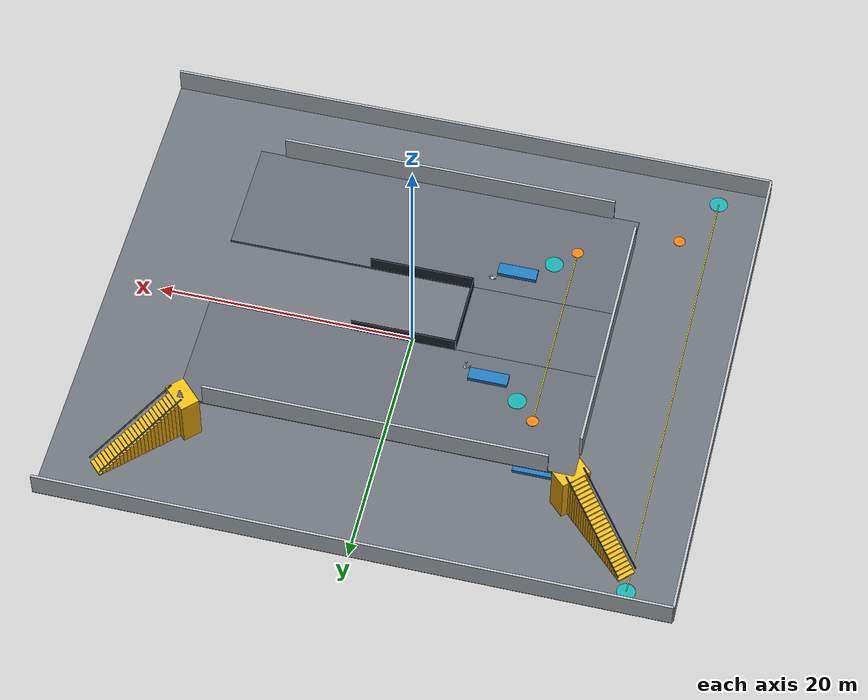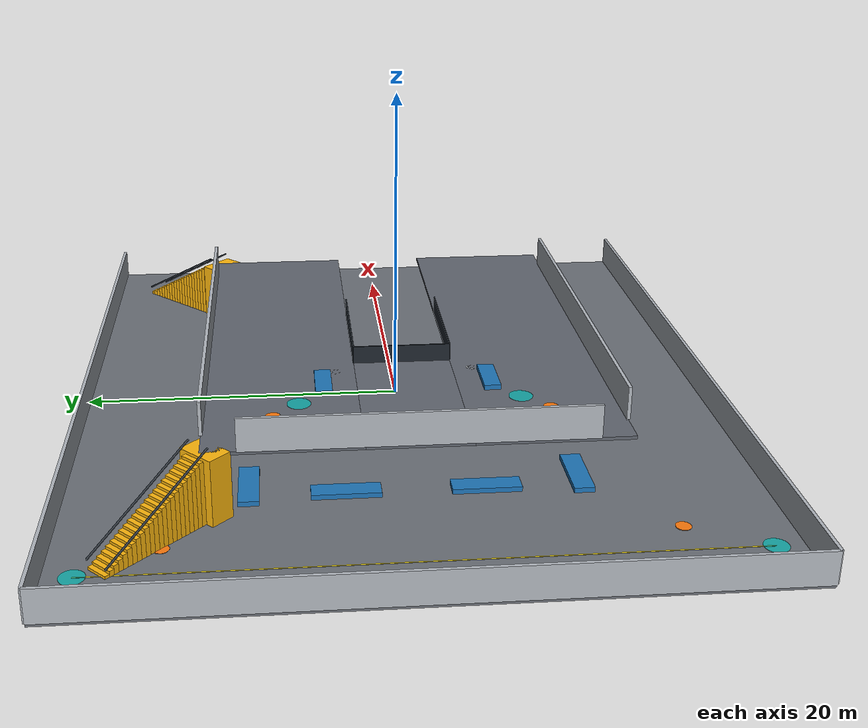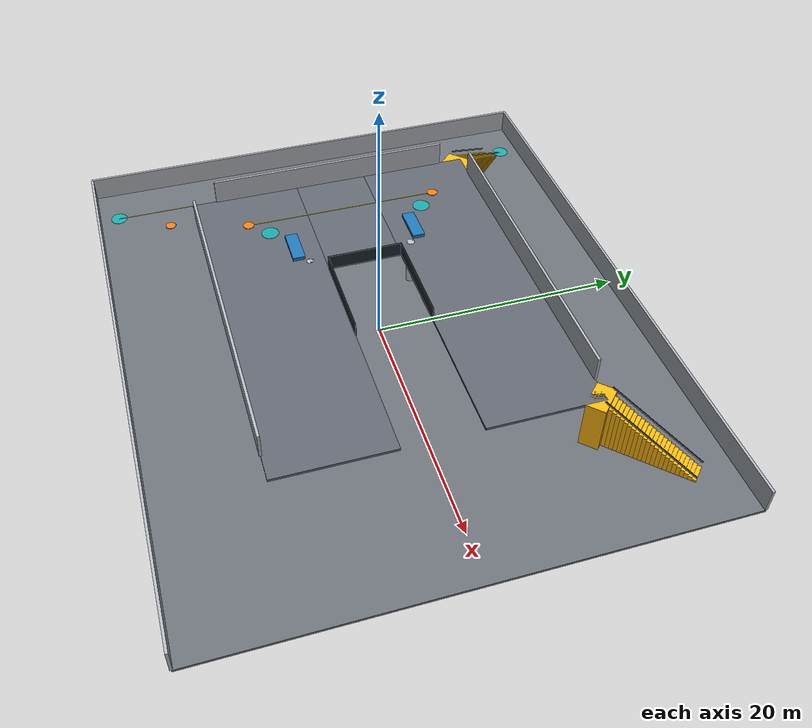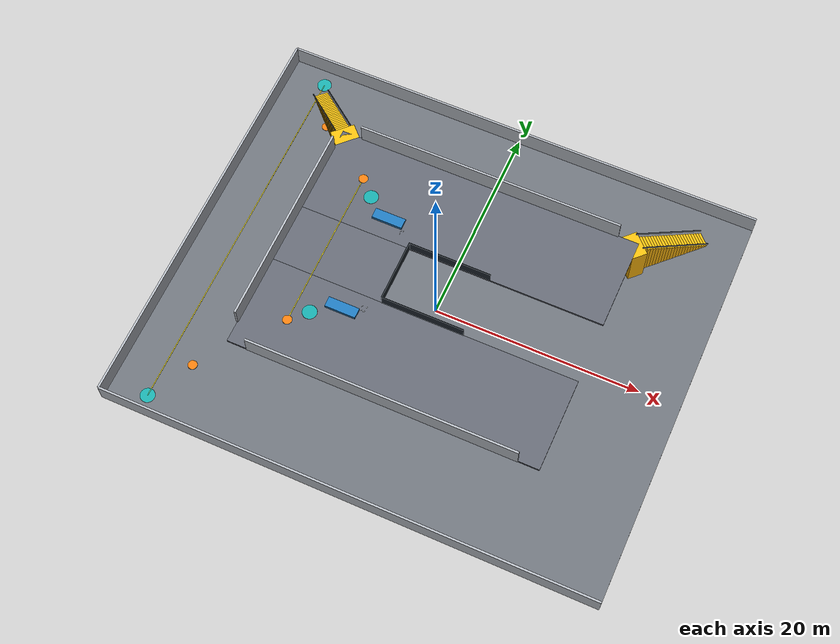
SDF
<sdf version="1.7">
 <world name="two_floor_warehouse">
  <model name="floor1">
   <static>true</static>
   <pose>0.0000 0.0000 -0.1000 0.0000 0.0000 0.0000</pose>
   <link name="link">
    <collision name="collision"><geometry><box><size>48 40 0.2</size></box></geometry></collision>
    <visual name="visual">
     <geometry><box><size>48 40 0.2</size></box></geometry>
     <material><ambient>.42 .44 .47 1</ambient><diffuse>.42 .44 .47 1</diffuse></material>
    </visual>
   </link>
  </model>
  <model name="floor2_north">
   <static>true</static>
   <pose>0.0000 7.5000 3.9000 0.0000 0.0000 0.0000</pose>
   <link name="link">
    <collision name="collision"><geometry><box><size>30.0 9.0 0.2</size></box></geometry></collision>
    <visual name="visual">
     <geometry><box><size>30.0 9.0 0.2</size></box></geometry>
     <material><ambient>.38 .40 .44 1</ambient><diffuse>.38 .40 .44 1</diffuse></material>
    </visual>
   </link>
  </model>
  <model name="floor2_south">
   <static>true</static>
   <pose>0.0000 -7.5000 3.9000 0.0000 0.0000 0.0000</pose>
   <link name="link">
    <collision name="collision"><geometry><box><size>30.0 9.0 0.2</size></box></geometry></collision>
    <visual name="visual">
     <geometry><box><size>30.0 9.0 0.2</size></box></geometry>
     <material><ambient>.38 .40 .44 1</ambient><diffuse>.38 .40 .44 1</diffuse></material>
    </visual>
   </link>
  </model>
  <model name="floor2_west">
   <static>true</static>
   <pose>-9.5000 0.0000 3.9000 0.0000 0.0000 0.0000</pose>
   <link name="link">
    <collision name="collision"><geometry><box><size>11.0 6.0 0.2</size></box></geometry></collision>
    <visual name="visual">
     <geometry><box><size>11.0 6.0 0.2</size></box></geometry>
     <material><ambient>.38 .40 .44 1</ambient><diffuse>.38 .40 .44 1</diffuse></material>
    </visual>
   </link>
  </model>
  <model name="atrium_rail_north">
   <static>true</static>
   <pose>0.0000 3.0000 4.5500 0.0000 0.0000 0.0000</pose>
   <link name="link">
    <collision name="collision"><geometry><box><size>8.0 0.08 1.1</size></box></geometry></collision>
    <visual name="visual">
     <geometry><box><size>8.0 0.08 1.1</size></box></geometry>
     <material><ambient>.12 .15 .18 1</ambient><diffuse>.12 .15 .18 1</diffuse></material>
    </visual>
   </link>
  </model>
  <model name="atrium_rail_south">
   <static>true</static>
   <pose>0.0000 -3.0000 4.5500 0.0000 0.0000 0.0000</pose>
   <link name="link">
    <collision name="collision"><geometry><box><size>8.0 0.08 1.1</size></box></geometry></collision>
    <visual name="visual">
     <geometry><box><size>8.0 0.08 1.1</size></box></geometry>
     <material><ambient>.12 .15 .18 1</ambient><diffuse>.12 .15 .18 1</diffuse></material>
    </visual>
   </link>
  </model>
  <model name="atrium_rail_west">
   <static>true</static>
   <pose>-4.0000 0.0000 4.5500 0.0000 0.0000 0.0000</pose>
   <link name="link">
    <collision name="collision"><geometry><box><size>0.08 6.0 1.1</size></box></geometry></collision>
    <visual name="visual">
     <geometry><box><size>0.08 6.0 1.1</size></box></geometry>
     <material><ambient>.12 .15 .18 1</ambient><diffuse>.12 .15 .18 1</diffuse></material>
    </visual>
   </link>
  </model>
  <model name="f1_wall_n">
   <static>true</static>
   <pose>0.0000 20.0000 1.0000 0.0000 0.0000 0.0000</pose>
   <link name="link">
    <collision name="collision"><geometry><box><size>48.0 0.2 2</size></box></geometry></collision>
    <visual name="visual">
     <geometry><box><size>48.0 0.2 2</size></box></geometry>
     <material><ambient>.7 .72 .75 1</ambient><diffuse>.7 .72 .75 1</diffuse></material>
    </visual>
   </link>
  </model>
  <model name="f1_wall_s">
   <static>true</static>
   <pose>0.0000 -20.0000 1.0000 0.0000 0.0000 0.0000</pose>
   <link name="link">
    <collision name="collision"><geometry><box><size>48.0 0.2 2</size></box></geometry></collision>
    <visual name="visual">
     <geometry><box><size>48.0 0.2 2</size></box></geometry>
     <material><ambient>.7 .72 .75 1</ambient><diffuse>.7 .72 .75 1</diffuse></material>
    </visual>
   </link>
  </model>
  <model name="f1_wall_w">
   <static>true</static>
   <pose>-24.0000 0.0000 1.0000 0.0000 0.0000 0.0000</pose>
   <link name="link">
    <collision name="collision"><geometry><box><size>0.2 40.0 2</size></box></geometry></collision>
    <visual name="visual">
     <geometry><box><size>0.2 40.0 2</size></box></geometry>
     <material><ambient>.7 .72 .75 1</ambient><diffuse>.7 .72 .75 1</diffuse></material>
    </visual>
   </link>
  </model>
  <model name="f2_wall_n">
   <static>true</static>
   <pose>0.0000 12.0000 5.0000 0.0000 0.0000 0.0000</pose>
   <link name="link">
    <collision name="collision"><geometry><box><size>26.0 0.2 2</size></box></geometry></collision>
    <visual name="visual">
     <geometry><box><size>26.0 0.2 2</size></box></geometry>
     <material><ambient>.7 .72 .75 1</ambient><diffuse>.7 .72 .75 1</diffuse></material>
    </visual>
   </link>
  </model>
  <model name="f2_wall_s">
   <static>true</static>
   <pose>0.0000 -12.0000 5.0000 0.0000 0.0000 0.0000</pose>
   <link name="link">
    <collision name="collision"><geometry><box><size>26.0 0.2 2</size></box></geometry></collision>
    <visual name="visual">
     <geometry><box><size>26.0 0.2 2</size></box></geometry>
     <material><ambient>.7 .72 .75 1</ambient><diffuse>.7 .72 .75 1</diffuse></material>
    </visual>
   </link>
  </model>
  <model name="f2_wall_w">
   <static>true</static>
   <pose>-15.0000 0.0000 5.0000 0.0000 0.0000 0.0000</pose>
   <link name="link">
    <collision name="collision"><geometry><box><size>0.2 20.0 2</size></box></geometry></collision>
    <visual name="visual">
     <geometry><box><size>0.2 20.0 2</size></box></geometry>
     <material><ambient>.7 .72 .75 1</ambient><diffuse>.7 .72 .75 1</diffuse></material>
    </visual>
   </link>
  </model>
  <model name="stair_ne">
   <static>true</static>
   <link name="step_01">
    <pose>19.9849 16.9849 0.0833 0 0 -2.356194</pose>
    <collision name="collision"><geometry><box><size>0.3080 1.4000 0.1667</size></box></geometry></collision>
    <visual name="visual">
     <geometry><box><size>0.3080 1.4000 0.1667</size></box></geometry>
     <material><ambient>1.0 0.72 0.05 1</ambient><diffuse>1.0 0.72 0.05 1</diffuse></material>
    </visual>
   </link>
   <link name="step_02">
    <pose>19.7728 16.7728 0.1667 0 0 -2.356194</pose>
    <collision name="collision"><geometry><box><size>0.3080 1.4000 0.3333</size></box></geometry></collision>
    <visual name="visual">
     <geometry><box><size>0.3080 1.4000 0.3333</size></box></geometry>
     <material><ambient>1.0 0.72 0.05 1</ambient><diffuse>1.0 0.72 0.05 1</diffuse></material>
    </visual>
   </link>
   <link name="step_03">
    <pose>19.5607 16.5607 0.2500 0 0 -2.356194</pose>
    <collision name="collision"><geometry><box><size>0.3080 1.4000 0.5000</size></box></geometry></collision>
    <visual name="visual">
     <geometry><box><size>0.3080 1.4000 0.5000</size></box></geometry>
     <material><ambient>1.0 0.72 0.05 1</ambient><diffuse>1.0 0.72 0.05 1</diffuse></material>
    </visual>
   </link>
   <link name="step_04">
    <pose>19.3486 16.3486 0.3333 0 0 -2.356194</pose>
    <collision name="collision"><geometry><box><size>0.3080 1.4000 0.6667</size></box></geometry></collision>
    <visual name="visual">
     <geometry><box><size>0.3080 1.4000 0.6667</size></box></geometry>
     <material><ambient>1.0 0.72 0.05 1</ambient><diffuse>1.0 0.72 0.05 1</diffuse></material>
    </visual>
   </link>
   <link name="step_05">
    <pose>19.1364 16.1364 0.4167 0 0 -2.356194</pose>
    <collision name="collision"><geometry><box><size>0.3080 1.4000 0.8333</size></box></geometry></collision>
    <visual name="visual">
     <geometry><box><size>0.3080 1.4000 0.8333</size></box></geometry>
     <material><ambient>1.0 0.72 0.05 1</ambient><diffuse>1.0 0.72 0.05 1</diffuse></material>
    </visual>
   </link>
   <link name="step_06">
    <pose>18.9243 15.9243 0.5000 0 0 -2.356194</pose>
    <collision name="collision"><geometry><box><size>0.3080 1.4000 1.0000</size></box></geometry></collision>
    <visual name="visual">
     <geometry><box><size>0.3080 1.4000 1.0000</size></box></geometry>
     <material><ambient>1.0 0.72 0.05 1</ambient><diffuse>1.0 0.72 0.05 1</diffuse></material>
    </visual>
   </link>
   <link name="step_07">
    <pose>18.7122 15.7122 0.5833 0 0 -2.356194</pose>
    <collision name="collision"><geometry><box><size>0.3080 1.4000 1.1667</size></box></geometry></collision>
    <visual name="visual">
     <geometry><box><size>0.3080 1.4000 1.1667</size></box></geometry>
     <material><ambient>1.0 0.72 0.05 1</ambient><diffuse>1.0 0.72 0.05 1</diffuse></material>
    </visual>
   </link>
   <link name="step_08">
    <pose>18.5001 15.5001 0.6667 0 0 -2.356194</pose>
    <collision name="collision"><geometry><box><size>0.3080 1.4000 1.3333</size></box></geometry></collision>
    <visual name="visual">
     <geometry><box><size>0.3080 1.4000 1.3333</size></box></geometry>
     <material><ambient>1.0 0.72 0.05 1</ambient><diffuse>1.0 0.72 0.05 1</diffuse></material>
    </visual>
   </link>
   <link name="step_09">
    <pose>18.2879 15.2879 0.7500 0 0 -2.356194</pose>
    <collision name="collision"><geometry><box><size>0.3080 1.4000 1.5000</size></box></geometry></collision>
    <visual name="visual">
     <geometry><box><size>0.3080 1.4000 1.5000</size></box></geometry>
     <material><ambient>1.0 0.72 0.05 1</ambient><diffuse>1.0 0.72 0.05 1</diffuse></material>
    </visual>
   </link>
   <link name="step_10">
    <pose>18.0758 15.0758 0.8333 0 0 -2.356194</pose>
    <collision name="collision"><geometry><box><size>0.3080 1.4000 1.6667</size></box></geometry></collision>
    <visual name="visual">
     <geometry><box><size>0.3080 1.4000 1.6667</size></box></geometry>
     <material><ambient>1.0 0.72 0.05 1</ambient><diffuse>1.0 0.72 0.05 1</diffuse></material>
    </visual>
   </link>
   <link name="step_11">
    <pose>17.8637 14.8637 0.9167 0 0 -2.356194</pose>
    <collision name="collision"><geometry><box><size>0.3080 1.4000 1.8333</size></box></geometry></collision>
    <visual name="visual">
     <geometry><box><size>0.3080 1.4000 1.8333</size></box></geometry>
     <material><ambient>1.0 0.72 0.05 1</ambient><diffuse>1.0 0.72 0.05 1</diffuse></material>
    </visual>
   </link>
   <link name="step_12">
    <pose>17.6516 14.6516 1.0000 0 0 -2.356194</pose>
    <collision name="collision"><geometry><box><size>0.3080 1.4000 2.0000</size></box></geometry></collision>
    <visual name="visual">
     <geometry><box><size>0.3080 1.4000 2.0000</size></box></geometry>
     <material><ambient>1.0 0.72 0.05 1</ambient><diffuse>1.0 0.72 0.05 1</diffuse></material>
    </visual>
   </link>
   <link name="step_13">
    <pose>17.4394 14.4394 1.0833 0 0 -2.356194</pose>
    <collision name="collision"><geometry><box><size>0.3080 1.4000 2.1667</size></box></geometry></collision>
    <visual name="visual">
     <geometry><box><size>0.3080 1.4000 2.1667</size></box></geometry>
     <material><ambient>1.0 0.72 0.05 1</ambient><diffuse>1.0 0.72 0.05 1</diffuse></material>
    </visual>
   </link>
   <link name="step_14">
    <pose>17.2273 14.2273 1.1667 0 0 -2.356194</pose>
    <collision name="collision"><geometry><box><size>0.3080 1.4000 2.3333</size></box></geometry></collision>
    <visual name="visual">
     <geometry><box><size>0.3080 1.4000 2.3333</size></box></geometry>
     <material><ambient>1.0 0.72 0.05 1</ambient><diffuse>1.0 0.72 0.05 1</diffuse></material>
    </visual>
   </link>
   <link name="step_15">
    <pose>17.0152 14.0152 1.2500 0 0 -2.356194</pose>
    <collision name="collision"><geometry><box><size>0.3080 1.4000 2.5000</size></box></geometry></collision>
    <visual name="visual">
     <geometry><box><size>0.3080 1.4000 2.5000</size></box></geometry>
     <material><ambient>1.0 0.72 0.05 1</ambient><diffuse>1.0 0.72 0.05 1</diffuse></material>
    </visual>
   </link>
   <link name="step_16">
    <pose>16.8031 13.8031 1.3333 0 0 -2.356194</pose>
    <collision name="collision"><geometry><box><size>0.3080 1.4000 2.6667</size></box></geometry></collision>
    <visual name="visual">
     <geometry><box><size>0.3080 1.4000 2.6667</size></box></geometry>
     <material><ambient>1.0 0.72 0.05 1</ambient><diffuse>1.0 0.72 0.05 1</diffuse></material>
    </visual>
   </link>
   <link name="step_17">
    <pose>16.5909 13.5909 1.4167 0 0 -2.356194</pose>
    <collision name="collision"><geometry><box><size>0.3080 1.4000 2.8333</size></box></geometry></collision>
    <visual name="visual">
     <geometry><box><size>0.3080 1.4000 2.8333</size></box></geometry>
     <material><ambient>1.0 0.72 0.05 1</ambient><diffuse>1.0 0.72 0.05 1</diffuse></material>
    </visual>
   </link>
   <link name="step_18">
    <pose>16.3788 13.3788 1.5000 0 0 -2.356194</pose>
    <collision name="collision"><geometry><box><size>0.3080 1.4000 3.0000</size></box></geometry></collision>
    <visual name="visual">
     <geometry><box><size>0.3080 1.4000 3.0000</size></box></geometry>
     <material><ambient>1.0 0.72 0.05 1</ambient><diffuse>1.0 0.72 0.05 1</diffuse></material>
    </visual>
   </link>
   <link name="step_19">
    <pose>16.1667 13.1667 1.5833 0 0 -2.356194</pose>
    <collision name="collision"><geometry><box><size>0.3080 1.4000 3.1667</size></box></geometry></collision>
    <visual name="visual">
     <geometry><box><size>0.3080 1.4000 3.1667</size></box></geometry>
     <material><ambient>1.0 0.72 0.05 1</ambient><diffuse>1.0 0.72 0.05 1</diffuse></material>
    </visual>
   </link>
   <link name="step_20">
    <pose>15.9546 12.9546 1.6667 0 0 -2.356194</pose>
    <collision name="collision"><geometry><box><size>0.3080 1.4000 3.3333</size></box></geometry></collision>
    <visual name="visual">
     <geometry><box><size>0.3080 1.4000 3.3333</size></box></geometry>
     <material><ambient>1.0 0.72 0.05 1</ambient><diffuse>1.0 0.72 0.05 1</diffuse></material>
    </visual>
   </link>
   <link name="step_21">
    <pose>15.7424 12.7424 1.7500 0 0 -2.356194</pose>
    <collision name="collision"><geometry><box><size>0.3080 1.4000 3.5000</size></box></geometry></collision>
    <visual name="visual">
     <geometry><box><size>0.3080 1.4000 3.5000</size></box></geometry>
     <material><ambient>1.0 0.72 0.05 1</ambient><diffuse>1.0 0.72 0.05 1</diffuse></material>
    </visual>
   </link>
   <link name="step_22">
    <pose>15.5303 12.5303 1.8333 0 0 -2.356194</pose>
    <collision name="collision"><geometry><box><size>0.3080 1.4000 3.6667</size></box></geometry></collision>
    <visual name="visual">
     <geometry><box><size>0.3080 1.4000 3.6667</size></box></geometry>
     <material><ambient>1.0 0.72 0.05 1</ambient><diffuse>1.0 0.72 0.05 1</diffuse></material>
    </visual>
   </link>
   <link name="step_23">
    <pose>15.3182 12.3182 1.9167 0 0 -2.356194</pose>
    <collision name="collision"><geometry><box><size>0.3080 1.4000 3.8333</size></box></geometry></collision>
    <visual name="visual">
     <geometry><box><size>0.3080 1.4000 3.8333</size></box></geometry>
     <material><ambient>1.0 0.72 0.05 1</ambient><diffuse>1.0 0.72 0.05 1</diffuse></material>
    </visual>
   </link>
   <link name="step_24">
    <pose>14.6818 11.6818 2.0000 0 0 -2.356194</pose>
    <collision name="collision"><geometry><box><size>1.5080 2.4000 4.0000</size></box></geometry></collision>
    <visual name="visual">
     <geometry><box><size>1.5080 2.4000 4.0000</size></box></geometry>
     <material><ambient>1.0 0.72 0.05 1</ambient><diffuse>1.0 0.72 0.05 1</diffuse></material>
    </visual>
   </link>
   <link name="rail_-1">
    <pose>17.0081 15.0829 2.55 0 -0.507113 -2.356194</pose>
    <collision name="collision"><geometry><box><size>8.2363 0.08 0.10</size></box></geometry></collision>
    <visual name="visual">
     <geometry><box><size>8.2363 0.08 0.10</size></box></geometry>
     <material><ambient>0.12 0.15 0.18 1</ambient></material>
    </visual>
   </link>
   <link name="rail_+1">
    <pose>18.0829 14.0081 2.55 0 -0.507113 -2.356194</pose>
    <collision name="collision"><geometry><box><size>8.2363 0.08 0.10</size></box></geometry></collision>
    <visual name="visual">
     <geometry><box><size>8.2363 0.08 0.10</size></box></geometry>
     <material><ambient>0.12 0.15 0.18 1</ambient></material>
    </visual>
   </link>
  </model>
  <model name="stair_nw">
   <static>true</static>
   <link name="step_01">
    <pose>-19.9849 16.9849 0.0833 0 0 -0.785398</pose>
    <collision name="collision"><geometry><box><size>0.3080 1.4000 0.1667</size></box></geometry></collision>
    <visual name="visual">
     <geometry><box><size>0.3080 1.4000 0.1667</size></box></geometry>
     <material><ambient>1.0 0.72 0.05 1</ambient><diffuse>1.0 0.72 0.05 1</diffuse></material>
    </visual>
   </link>
   <link name="step_02">
    <pose>-19.7728 16.7728 0.1667 0 0 -0.785398</pose>
    <collision name="collision"><geometry><box><size>0.3080 1.4000 0.3333</size></box></geometry></collision>
    <visual name="visual">
     <geometry><box><size>0.3080 1.4000 0.3333</size></box></geometry>
     <material><ambient>1.0 0.72 0.05 1</ambient><diffuse>1.0 0.72 0.05 1</diffuse></material>
    </visual>
   </link>
   <link name="step_03">
    <pose>-19.5607 16.5607 0.2500 0 0 -0.785398</pose>
    <collision name="collision"><geometry><box><size>0.3080 1.4000 0.5000</size></box></geometry></collision>
    <visual name="visual">
     <geometry><box><size>0.3080 1.4000 0.5000</size></box></geometry>
     <material><ambient>1.0 0.72 0.05 1</ambient><diffuse>1.0 0.72 0.05 1</diffuse></material>
    </visual>
   </link>
   <link name="step_04">
    <pose>-19.3486 16.3486 0.3333 0 0 -0.785398</pose>
    <collision name="collision"><geometry><box><size>0.3080 1.4000 0.6667</size></box></geometry></collision>
    <visual name="visual">
     <geometry><box><size>0.3080 1.4000 0.6667</size></box></geometry>
     <material><ambient>1.0 0.72 0.05 1</ambient><diffuse>1.0 0.72 0.05 1</diffuse></material>
    </visual>
   </link>
   <link name="step_05">
    <pose>-19.1364 16.1364 0.4167 0 0 -0.785398</pose>
    <collision name="collision"><geometry><box><size>0.3080 1.4000 0.8333</size></box></geometry></collision>
    <visual name="visual">
     <geometry><box><size>0.3080 1.4000 0.8333</size></box></geometry>
     <material><ambient>1.0 0.72 0.05 1</ambient><diffuse>1.0 0.72 0.05 1</diffuse></material>
    </visual>
   </link>
   <link name="step_06">
    <pose>-18.9243 15.9243 0.5000 0 0 -0.785398</pose>
    <collision name="collision"><geometry><box><size>0.3080 1.4000 1.0000</size></box></geometry></collision>
    <visual name="visual">
     <geometry><box><size>0.3080 1.4000 1.0000</size></box></geometry>
     <material><ambient>1.0 0.72 0.05 1</ambient><diffuse>1.0 0.72 0.05 1</diffuse></material>
    </visual>
   </link>
   <link name="step_07">
    <pose>-18.7122 15.7122 0.5833 0 0 -0.785398</pose>
    <collision name="collision"><geometry><box><size>0.3080 1.4000 1.1667</size></box></geometry></collision>
    <visual name="visual">
     <geometry><box><size>0.3080 1.4000 1.1667</size></box></geometry>
     <material><ambient>1.0 0.72 0.05 1</ambient><diffuse>1.0 0.72 0.05 1</diffuse></material>
    </visual>
   </link>
   <link name="step_08">
    <pose>-18.5001 15.5001 0.6667 0 0 -0.785398</pose>
    <collision name="collision"><geometry><box><size>0.3080 1.4000 1.3333</size></box></geometry></collision>
    <visual name="visual">
     <geometry><box><size>0.3080 1.4000 1.3333</size></box></geometry>
     <material><ambient>1.0 0.72 0.05 1</ambient><diffuse>1.0 0.72 0.05 1</diffuse></material>
    </visual>
   </link>
   <link name="step_09">
    <pose>-18.2879 15.2879 0.7500 0 0 -0.785398</pose>
    <collision name="collision"><geometry><box><size>0.3080 1.4000 1.5000</size></box></geometry></collision>
    <visual name="visual">
     <geometry><box><size>0.3080 1.4000 1.5000</size></box></geometry>
     <material><ambient>1.0 0.72 0.05 1</ambient><diffuse>1.0 0.72 0.05 1</diffuse></material>
    </visual>
   </link>
   <link name="step_10">
    <pose>-18.0758 15.0758 0.8333 0 0 -0.785398</pose>
    <collision name="collision"><geometry><box><size>0.3080 1.4000 1.6667</size></box></geometry></collision>
    <visual name="visual">
     <geometry><box><size>0.3080 1.4000 1.6667</size></box></geometry>
     <material><ambient>1.0 0.72 0.05 1</ambient><diffuse>1.0 0.72 0.05 1</diffuse></material>
    </visual>
   </link>
   <link name="step_11">
    <pose>-17.8637 14.8637 0.9167 0 0 -0.785398</pose>
    <collision name="collision"><geometry><box><size>0.3080 1.4000 1.8333</size></box></geometry></collision>
    <visual name="visual">
     <geometry><box><size>0.3080 1.4000 1.8333</size></box></geometry>
     <material><ambient>1.0 0.72 0.05 1</ambient><diffuse>1.0 0.72 0.05 1</diffuse></material>
    </visual>
   </link>
   <link name="step_12">
    <pose>-17.6516 14.6516 1.0000 0 0 -0.785398</pose>
    <collision name="collision"><geometry><box><size>0.3080 1.4000 2.0000</size></box></geometry></collision>
    <visual name="visual">
     <geometry><box><size>0.3080 1.4000 2.0000</size></box></geometry>
     <material><ambient>1.0 0.72 0.05 1</ambient><diffuse>1.0 0.72 0.05 1</diffuse></material>
    </visual>
   </link>
   <link name="step_13">
    <pose>-17.4394 14.4394 1.0833 0 0 -0.785398</pose>
    <collision name="collision"><geometry><box><size>0.3080 1.4000 2.1667</size></box></geometry></collision>
    <visual name="visual">
     <geometry><box><size>0.3080 1.4000 2.1667</size></box></geometry>
     <material><ambient>1.0 0.72 0.05 1</ambient><diffuse>1.0 0.72 0.05 1</diffuse></material>
    </visual>
   </link>
   <link name="step_14">
    <pose>-17.2273 14.2273 1.1667 0 0 -0.785398</pose>
    <collision name="collision"><geometry><box><size>0.3080 1.4000 2.3333</size></box></geometry></collision>
    <visual name="visual">
     <geometry><box><size>0.3080 1.4000 2.3333</size></box></geometry>
     <material><ambient>1.0 0.72 0.05 1</ambient><diffuse>1.0 0.72 0.05 1</diffuse></material>
    </visual>
   </link>
   <link name="step_15">
    <pose>-17.0152 14.0152 1.2500 0 0 -0.785398</pose>
    <collision name="collision"><geometry><box><size>0.3080 1.4000 2.5000</size></box></geometry></collision>
    <visual name="visual">
     <geometry><box><size>0.3080 1.4000 2.5000</size></box></geometry>
     <material><ambient>1.0 0.72 0.05 1</ambient><diffuse>1.0 0.72 0.05 1</diffuse></material>
    </visual>
   </link>
   <link name="step_16">
    <pose>-16.8031 13.8031 1.3333 0 0 -0.785398</pose>
    <collision name="collision"><geometry><box><size>0.3080 1.4000 2.6667</size></box></geometry></collision>
    <visual name="visual">
     <geometry><box><size>0.3080 1.4000 2.6667</size></box></geometry>
     <material><ambient>1.0 0.72 0.05 1</ambient><diffuse>1.0 0.72 0.05 1</diffuse></material>
    </visual>
   </link>
   <link name="step_17">
    <pose>-16.5909 13.5909 1.4167 0 0 -0.785398</pose>
    <collision name="collision"><geometry><box><size>0.3080 1.4000 2.8333</size></box></geometry></collision>
    <visual name="visual">
     <geometry><box><size>0.3080 1.4000 2.8333</size></box></geometry>
     <material><ambient>1.0 0.72 0.05 1</ambient><diffuse>1.0 0.72 0.05 1</diffuse></material>
    </visual>
   </link>
   <link name="step_18">
    <pose>-16.3788 13.3788 1.5000 0 0 -0.785398</pose>
    <collision name="collision"><geometry><box><size>0.3080 1.4000 3.0000</size></box></geometry></collision>
    <visual name="visual">
     <geometry><box><size>0.3080 1.4000 3.0000</size></box></geometry>
     <material><ambient>1.0 0.72 0.05 1</ambient><diffuse>1.0 0.72 0.05 1</diffuse></material>
    </visual>
   </link>
   <link name="step_19">
    <pose>-16.1667 13.1667 1.5833 0 0 -0.785398</pose>
    <collision name="collision"><geometry><box><size>0.3080 1.4000 3.1667</size></box></geometry></collision>
    <visual name="visual">
     <geometry><box><size>0.3080 1.4000 3.1667</size></box></geometry>
     <material><ambient>1.0 0.72 0.05 1</ambient><diffuse>1.0 0.72 0.05 1</diffuse></material>
    </visual>
   </link>
   <link name="step_20">
    <pose>-15.9546 12.9546 1.6667 0 0 -0.785398</pose>
    <collision name="collision"><geometry><box><size>0.3080 1.4000 3.3333</size></box></geometry></collision>
    <visual name="visual">
     <geometry><box><size>0.3080 1.4000 3.3333</size></box></geometry>
     <material><ambient>1.0 0.72 0.05 1</ambient><diffuse>1.0 0.72 0.05 1</diffuse></material>
    </visual>
   </link>
   <link name="step_21">
    <pose>-15.7424 12.7424 1.7500 0 0 -0.785398</pose>
    <collision name="collision"><geometry><box><size>0.3080 1.4000 3.5000</size></box></geometry></collision>
    <visual name="visual">
     <geometry><box><size>0.3080 1.4000 3.5000</size></box></geometry>
     <material><ambient>1.0 0.72 0.05 1</ambient><diffuse>1.0 0.72 0.05 1</diffuse></material>
    </visual>
   </link>
   <link name="step_22">
    <pose>-15.5303 12.5303 1.8333 0 0 -0.785398</pose>
    <collision name="collision"><geometry><box><size>0.3080 1.4000 3.6667</size></box></geometry></collision>
    <visual name="visual">
     <geometry><box><size>0.3080 1.4000 3.6667</size></box></geometry>
     <material><ambient>1.0 0.72 0.05 1</ambient><diffuse>1.0 0.72 0.05 1</diffuse></material>
    </visual>
   </link>
   <link name="step_23">
    <pose>-15.3182 12.3182 1.9167 0 0 -0.785398</pose>
    <collision name="collision"><geometry><box><size>0.3080 1.4000 3.8333</size></box></geometry></collision>
    <visual name="visual">
     <geometry><box><size>0.3080 1.4000 3.8333</size></box></geometry>
     <material><ambient>1.0 0.72 0.05 1</ambient><diffuse>1.0 0.72 0.05 1</diffuse></material>
    </visual>
   </link>
   <link name="step_24">
    <pose>-14.6818 11.6818 2.0000 0 0 -0.785398</pose>
    <collision name="collision"><geometry><box><size>1.5080 2.4000 4.0000</size></box></geometry></collision>
    <visual name="visual">
     <geometry><box><size>1.5080 2.4000 4.0000</size></box></geometry>
     <material><ambient>1.0 0.72 0.05 1</ambient><diffuse>1.0 0.72 0.05 1</diffuse></material>
    </visual>
   </link>
   <link name="rail_-1">
    <pose>-18.0829 14.0081 2.55 0 -0.507113 -0.785398</pose>
    <collision name="collision"><geometry><box><size>8.2363 0.08 0.10</size></box></geometry></collision>
    <visual name="visual">
     <geometry><box><size>8.2363 0.08 0.10</size></box></geometry>
     <material><ambient>0.12 0.15 0.18 1</ambient></material>
    </visual>
   </link>
   <link name="rail_+1">
    <pose>-17.0081 15.0829 2.55 0 -0.507113 -0.785398</pose>
    <collision name="collision"><geometry><box><size>8.2363 0.08 0.10</size></box></geometry></collision>
    <visual name="visual">
     <geometry><box><size>8.2363 0.08 0.10</size></box></geometry>
     <material><ambient>0.12 0.15 0.18 1</ambient></material>
    </visual>
   </link>
  </model>
  <model name="task_f1_nw_outer">
   <static>true</static>
   <pose>-18.0000 14.0000 0.0150 0.0000 0.0000 0.0000</pose>
   <link name="link">
    <visual name="visual">
     <geometry><cylinder><radius>0.45</radius><length>0.03</length></cylinder></geometry>
     <material><ambient>1 .48 .05 1</ambient></material>
    </visual>
   </link>
  </model>
  <model name="task_f1_sw_outer">
   <static>true</static>
   <pose>-18.0000 -14.0000 0.0150 0.0000 0.0000 0.0000</pose>
   <link name="link">
    <visual name="visual">
     <geometry><cylinder><radius>0.45</radius><length>0.03</length></cylinder></geometry>
     <material><ambient>1 .48 .05 1</ambient></material>
    </visual>
   </link>
  </model>
  <model name="task_f1_nw_inner">
   <static>true</static>
   <pose>-7.0000 6.0000 0.0150 0.0000 0.0000 0.0000</pose>
   <link name="link">
    <visual name="visual">
     <geometry><cylinder><radius>0.45</radius><length>0.03</length></cylinder></geometry>
     <material><ambient>1 .48 .05 1</ambient></material>
    </visual>
   </link>
  </model>
  <model name="task_f1_sw_inner">
   <static>true</static>
   <pose>-7.0000 -6.0000 0.0150 0.0000 0.0000 0.0000</pose>
   <link name="link">
    <visual name="visual">
     <geometry><cylinder><radius>0.45</radius><length>0.03</length></cylinder></geometry>
     <material><ambient>1 .48 .05 1</ambient></material>
    </visual>
   </link>
  </model>
  <model name="task_f2_nw">
   <static>true</static>
   <pose>-11.0000 8.0000 4.0150 0.0000 0.0000 0.0000</pose>
   <link name="link">
    <visual name="visual">
     <geometry><cylinder><radius>0.45</radius><length>0.03</length></cylinder></geometry>
     <material><ambient>1 .48 .05 1</ambient></material>
    </visual>
   </link>
  </model>
  <model name="task_f2_sw">
   <static>true</static>
   <pose>-11.0000 -8.0000 4.0150 0.0000 0.0000 0.0000</pose>
   <link name="link">
    <visual name="visual">
     <geometry><cylinder><radius>0.45</radius><length>0.03</length></cylinder></geometry>
     <material><ambient>1 .48 .05 1</ambient></material>
    </visual>
   </link>
  </model>
  <model name="handover_stair_nw_f1_send">
   <static>true</static>
   <pose>-20.3000 18.3000 0.0200 0.0000 0.0000 0.0000</pose>
   <link name="link">
    <visual name="visual">
     <geometry><cylinder><radius>0.7</radius><length>0.04</length></cylinder></geometry>
     <material><ambient>0 .8 .78 .7</ambient></material>
    </visual>
   </link>
  </model>
  <model name="handover_stair_nw_f2_receive">
   <static>true</static>
   <pose>-9.5000 6.5000 4.0200 0.0000 0.0000 0.0000</pose>
   <link name="link">
    <visual name="visual">
     <geometry><cylinder><radius>0.7</radius><length>0.04</length></cylinder></geometry>
     <material><ambient>0 .8 .78 .7</ambient></material>
    </visual>
   </link>
  </model>
  <model name="handover_stair_sw_f1_send">
   <static>true</static>
   <pose>-20.3000 -18.3000 0.0200 0.0000 0.0000 0.0000</pose>
   <link name="link">
    <visual name="visual">
     <geometry><cylinder><radius>0.7</radius><length>0.04</length></cylinder></geometry>
     <material><ambient>0 .8 .78 .7</ambient></material>
    </visual>
   </link>
  </model>
  <model name="handover_stair_sw_f2_receive">
   <static>true</static>
   <pose>-9.5000 -6.5000 4.0200 0.0000 0.0000 0.0000</pose>
   <link name="link">
    <visual name="visual">
     <geometry><cylinder><radius>0.7</radius><length>0.04</length></cylinder></geometry>
     <material><ambient>0 .8 .78 .7</ambient></material>
    </visual>
   </link>
  </model>
  <model name="f1_platform_nw_a">
   <static>true</static>
   <pose>-12.0000 9.5000 0.1500 0.0000 0.0000 0.0000</pose>
   <link name="link">
    <collision name="collision"><geometry><box><size>4.0 1.2 0.3</size></box></geometry></collision>
    <visual name="visual">
     <geometry><box><size>4.0 1.2 0.3</size></box></geometry>
     <material><ambient>.12 .46 .72 1</ambient><diffuse>.12 .46 .72 1</diffuse></material>
    </visual>
   </link>
  </model>
  <model name="f1_platform_sw_a">
   <static>true</static>
   <pose>-12.0000 -9.5000 0.1500 0.0000 0.0000 0.0000</pose>
   <link name="link">
    <collision name="collision"><geometry><box><size>4.0 1.2 0.3</size></box></geometry></collision>
    <visual name="visual">
     <geometry><box><size>4.0 1.2 0.3</size></box></geometry>
     <material><ambient>.12 .46 .72 1</ambient><diffuse>.12 .46 .72 1</diffuse></material>
    </visual>
   </link>
  </model>
  <model name="f1_platform_w_b">
   <static>true</static>
   <pose>-13.0000 4.0000 0.1500 0.0000 0.0000 0.0000</pose>
   <link name="link">
    <collision name="collision"><geometry><box><size>1.2 4.0 0.3</size></box></geometry></collision>
    <visual name="visual">
     <geometry><box><size>1.2 4.0 0.3</size></box></geometry>
     <material><ambient>.12 .46 .72 1</ambient><diffuse>.12 .46 .72 1</diffuse></material>
    </visual>
   </link>
  </model>
  <model name="f1_platform_w_c">
   <static>true</static>
   <pose>-13.0000 -4.0000 0.1500 0.0000 0.0000 0.0000</pose>
   <link name="link">
    <collision name="collision"><geometry><box><size>1.2 4.0 0.3</size></box></geometry></collision>
    <visual name="visual">
     <geometry><box><size>1.2 4.0 0.3</size></box></geometry>
     <material><ambient>.12 .46 .72 1</ambient><diffuse>.12 .46 .72 1</diffuse></material>
    </visual>
   </link>
  </model>
  <model name="f2_platform_w_n">
   <static>true</static>
   <pose>-7.0000 5.0000 4.1500 0.0000 0.0000 0.0000</pose>
   <link name="link">
    <collision name="collision"><geometry><box><size>3.0 1.0 0.3</size></box></geometry></collision>
    <visual name="visual">
     <geometry><box><size>3.0 1.0 0.3</size></box></geometry>
     <material><ambient>.12 .46 .72 1</ambient><diffuse>.12 .46 .72 1</diffuse></material>
    </visual>
   </link>
  </model>
  <model name="f2_platform_w_s">
   <static>true</static>
   <pose>-7.0000 -5.0000 4.1500 0.0000 0.0000 0.0000</pose>
   <link name="link">
    <collision name="collision"><geometry><box><size>3.0 1.0 0.3</size></box></geometry></collision>
    <visual name="visual">
     <geometry><box><size>3.0 1.0 0.3</size></box></geometry>
     <material><ambient>.12 .46 .72 1</ambient><diffuse>.12 .46 .72 1</diffuse></material>
    </visual>
   </link>
  </model>
  <model name="column_nw">
   <static>true</static>
   <pose>-5.2000 4.2000 2.0000 0.0000 0.0000 0.0000</pose>
   <link name="link">
    <collision name="collision">
     <geometry><cylinder><radius>0.3200</radius><length>4.0000</length></cylinder></geometry>
    </collision>
    <visual name="visual">
     <geometry><cylinder><radius>0.3200</radius><length>4.0000</length></cylinder></geometry>
     <material><ambient>0.72 0.74 0.76 1</ambient><diffuse>0.72 0.74 0.76 1</diffuse></material>
    </visual>
   </link>
  </model>
  <model name="column_sw">
   <static>true</static>
   <pose>-5.2000 -4.2000 2.0000 0.0000 0.0000 0.0000</pose>
   <link name="link">
    <collision name="collision">
     <geometry><cylinder><radius>0.3200</radius><length>4.0000</length></cylinder></geometry>
    </collision>
    <visual name="visual">
     <geometry><cylinder><radius>0.3200</radius><length>4.0000</length></cylinder></geometry>
     <material><ambient>0.72 0.74 0.76 1</ambient><diffuse>0.72 0.74 0.76 1</diffuse></material>
    </visual>
   </link>
  </model>
  <model name="lane_floor1_ring_3">
   <static>true</static>
   <pose>-20.3000 0.0000 0.0150 0 0 -1.570796</pose>
   <link name="link">
    <visual name="visual">
     <geometry><box><size>36.6000 .08 .01</size></box></geometry>
     <material><ambient>0.95 0.85 0.12 1</ambient></material>
    </visual>
   </link>
  </model>
  <model name="lane_floor2_ring_3">
   <static>true</static>
   <pose>-11.0000 0.0000 4.0150 0 0 -1.570796</pose>
   <link name="link">
    <visual name="visual">
     <geometry><box><size>16.0000 .08 .01</size></box></geometry>
     <material><ambient>0.95 0.85 0.12 1</ambient></material>
    </visual>
   </link>
  </model>
 </world>
</sdf>
